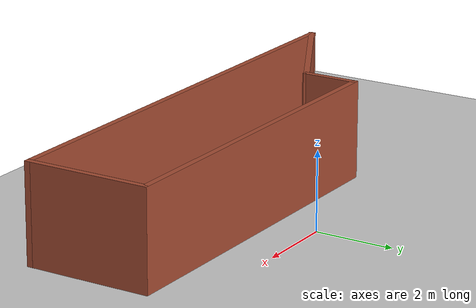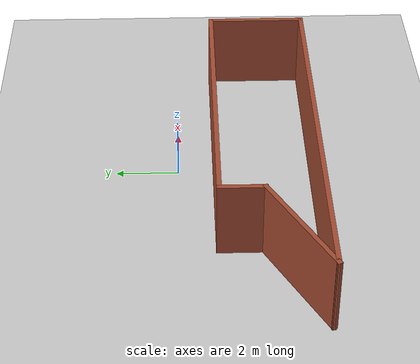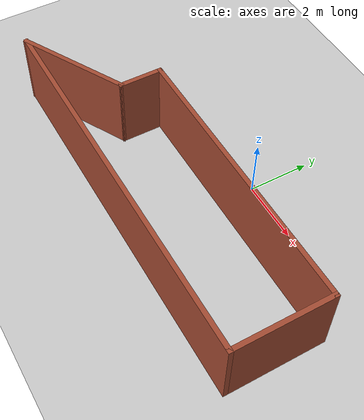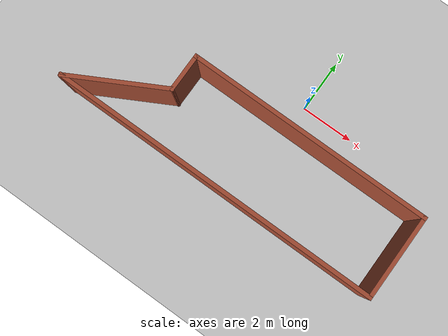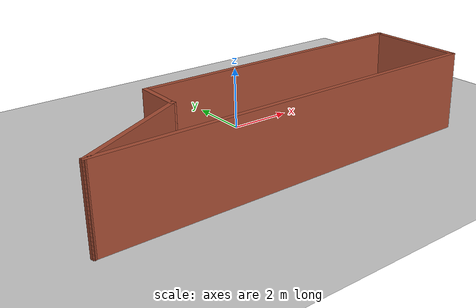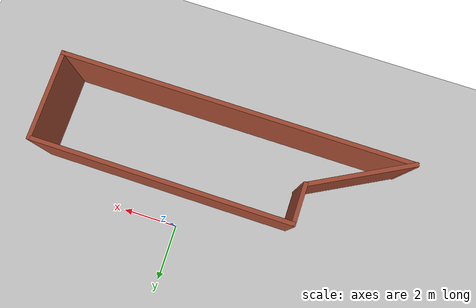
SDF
<sdf version='1.4'>
  <world name='default'>
    <!-- A global light source -->
    <include>
      <uri>model://sun</uri>
    </include>

    <!-- A ground plane -->
    <include>
      <uri>model://ground_plane</uri>
    </include>

    <physics type="ode">
      <real_time_update_rate>1000.0</real_time_update_rate>
      <max_step_size>0.001</max_step_size>
      <real_time_factor>1</real_time_factor>
      <ode>
        <solver>
          <type>quick</type>
          <iters>150</iters>
          <precon_iters>0</precon_iters>
          <sor>1.400000</sor>
          <use_dynamic_moi_rescaling>1</use_dynamic_moi_rescaling>
        </solver>
        <constraints>
          <cfm>0.00001</cfm>
          <erp>0.2</erp>
          <contact_max_correcting_vel>2000.000000</contact_max_correcting_vel>
          <contact_surface_layer>0.01000</contact_surface_layer>
        </constraints>
      </ode>
    </physics>

    <!-- Load world -->
    <include>
      <uri>model://demo_wall</uri>
    </include>

    <scene>
      <ambient>0.4 0.4 0.4 1</ambient>
      <background>0.7 0.7 0.7 1</background>
      <shadows>true</shadows>
    </scene>

    <gui fullscreen='0'>
      <camera name='user_camera'>
        <pose>0.8 0.0 12.0 0 1.5708 0</pose>
        <view_controller>orbit</view_controller>
      </camera>
    </gui>
  </world>
</sdf>

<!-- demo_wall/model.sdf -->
<sdf version='1.7'>
  <model name='demo_wall'>
    <pose>-0.898296 -2.1908 0 0 -0 0</pose>
    <link name='Wall_0'>
      <collision name='Wall_0_Collision'>
        <geometry>
          <box>
            <size>1.5 0.15 2.5</size>
          </box>
        </geometry>
        <pose>0 0 1.25 0 -0 0</pose>
      </collision>
      <visual name='Wall_0_Visual'>
        <pose>0 0 1.25 0 -0 0</pose>
        <geometry>
          <box>
            <size>1.5 0.15 2.5</size>
          </box>
        </geometry>
        <material>
          <script>
            <uri>file://media/materials/scripts/gazebo.material</uri>
            <name>Gazebo/Bricks</name>
          </script>
          <ambient>1 1 1 1</ambient>
        </material>
        <meta>
          <layer>0</layer>
        </meta>
      </visual>
      <pose>-2.9117 0.335796 0 0 -0 1.5708</pose>
    </link>
    <link name='Wall_1'>
      <collision name='Wall_1_Collision'>
        <geometry>
          <box>
            <size>9.25 0.15 2.5</size>
          </box>
        </geometry>
        <pose>0 0 1.25 0 -0 0</pose>
      </collision>
      <visual name='Wall_1_Visual'>
        <pose>0 0 1.25 0 -0 0</pose>
        <geometry>
          <box>
            <size>9.25 0.15 2.5</size>
          </box>
        </geometry>
        <material>
          <script>
            <uri>file://media/materials/scripts/gazebo.material</uri>
            <name>Gazebo/Bricks</name>
          </script>
          <ambient>1 1 1 1</ambient>
        </material>
        <meta>
          <layer>0</layer>
        </meta>
      </visual>
      <pose>1.6383 1.0108 0 0 -0 0</pose>
    </link>
    <link name='Wall_2'>
      <collision name='Wall_2_Collision'>
        <geometry>
          <box>
            <size>3.25 0.15 2.5</size>
          </box>
        </geometry>
        <pose>0 0 1.25 0 -0 0</pose>
      </collision>
      <visual name='Wall_2_Visual'>
        <pose>0 0 1.25 0 -0 0</pose>
        <geometry>
          <box>
            <size>3.25 0.15 2.5</size>
          </box>
        </geometry>
        <material>
          <script>
            <uri>file://media/materials/scripts/gazebo.material</uri>
            <name>Gazebo/Bricks</name>
          </script>
          <ambient>1 1 1 1</ambient>
        </material>
        <meta>
          <layer>0</layer>
        </meta>
      </visual>
      <pose>6.1883 -0.539204 0 0 -0 -1.5708</pose>
    </link>
    <link name='Wall_3'>
      <collision name='Wall_3_Collision'>
        <geometry>
          <box>
            <size>12.5 0.15 2.5</size>
          </box>
        </geometry>
        <pose>0 0 1.25 0 -0 0</pose>
      </collision>
      <visual name='Wall_3_Visual'>
        <pose>0 0 1.25 0 -0 0</pose>
        <geometry>
          <box>
            <size>12.5 0.15 2.5</size>
          </box>
        </geometry>
        <material>
          <script>
            <uri>file://media/materials/scripts/gazebo.material</uri>
            <name>Gazebo/Bricks</name>
          </script>
          <ambient>1 1 1 1</ambient>
        </material>
        <meta>
          <layer>0</layer>
        </meta>
      </visual>
      <pose>0.013296 -2.0892 0 0 -0 3.14159</pose>
    </link>
    <link name='Wall_4'>
      <collision name='Wall_4_Collision'>
        <geometry>
          <box>
            <size>3.84121 0.15 2.5</size>
          </box>
        </geometry>
        <pose>0 0 1.25 0 -0 0</pose>
      </collision>
      <visual name='Wall_4_Visual'>
        <pose>0 0 1.25 0 -0 0</pose>
        <geometry>
          <box>
            <size>3.84121 0.15 2.5</size>
          </box>
        </geometry>
        <material>
          <script>
            <uri>file://media/materials/scripts/gazebo.material</uri>
            <name>Gazebo/Bricks</name>
          </script>
          <ambient>1 1 1 1</ambient>
        </material>
        <meta>
          <layer>0</layer>
        </meta>
      </visual>
      <pose>-4.5367 -1.2142 0 0 -0 0.493941</pose>
    </link>
    <static>1</static>
  </model>
</sdf>
